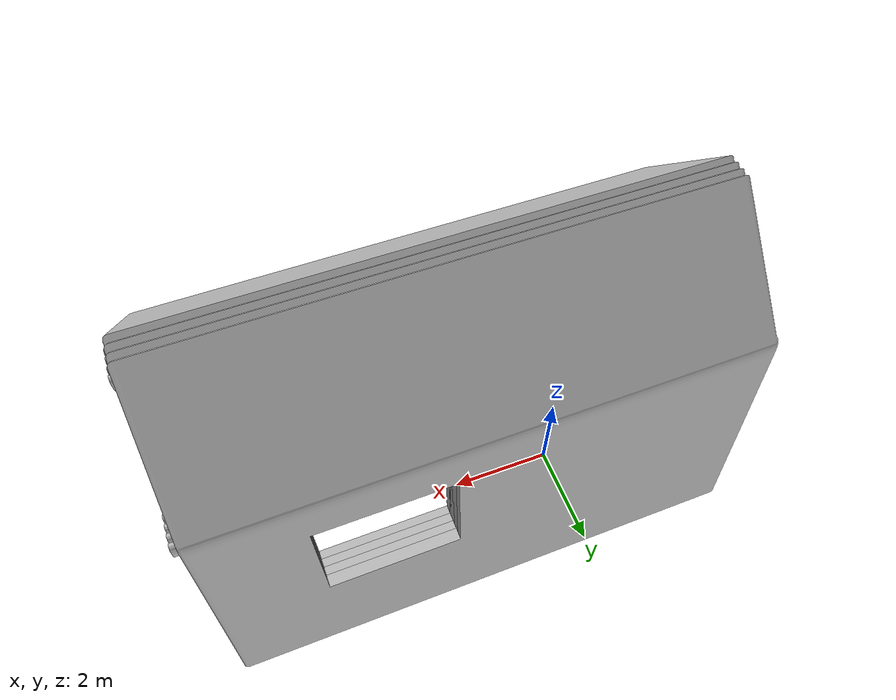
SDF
<?xml version="1.0" ?>
<sdf version="1.5">
  <model name="checkpoint_add">

	<include>
      <name>t1</name>
      <pose>0 0 0 0 0 3.14</pose>
      <uri>model://tent_add</uri>
    </include>
    <include>
      <name>d1</name>
      <pose>0.5 -0.9 0 0 0 0</pose>
      <uri>model://sandbag_add</uri>
    </include>
    <include>
      <name>d2</name>
      <pose>0.5 -0.75 0 0 0 0</pose>
      <uri>model://sandbag_add</uri>
    </include>
    <include>
      <name>d3</name>
      <pose>0.5 -0.6 0 0 0 0</pose>
      <uri>model://sandbag_add</uri>
    </include>
    <include>
      <name>d4</name>
      <pose>0.5 -0.45 0 0 0 0</pose>
      <uri>model://sandbag_add</uri>
    </include>

  </model>
</sdf>

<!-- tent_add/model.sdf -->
<sdf version='1.5'>
  <model name='tent_add'>
    <static>true</static>
      <link name='tent_add'>
        <pose frame=''>0 0 0 1.57 0 0</pose>
         <collision name='tent_add'>
          <geometry>
            <mesh>
              <scale>0.02 0.04 0.02</scale>
              <uri>model://tent_add/model.dae</uri>
            </mesh>
          </geometry>
          <max_contacts>10</max_contacts>
        </collision>
        <visual name='tent_add'>
        <cast_shadows>false</cast_shadows>
          <geometry>
            <mesh>
              <scale>0.02 0.04 0.02</scale>
              <uri>model://tent_add/model.dae</uri>
            </mesh>
          </geometry>
          <material>
            <script>
              <name>tent_add</name>
              <uri>model://tent_add/model.dae</uri>
            </script>
          </material>
        </visual>
      </link>
  </model>
</sdf>

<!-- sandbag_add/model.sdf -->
<sdf version='1.5'>
  <model name='sandbag_add'>
    <static>true</static>
      <link name='sandbag_add'>
        <pose frame=''>0 0 0 1.57 0 0</pose>
         <collision name='sandbag_add'>
          <geometry>
            <mesh>
              <scale>0.05 0.1 0.05</scale>
              <uri>model://sandbag_add/model.dae</uri>
            </mesh>
          </geometry>
          <max_contacts>10</max_contacts>
        </collision>
        <visual name='sandbag_add'>
        <cast_shadows>false</cast_shadows>
          <geometry>
            <mesh>
              <scale>0.05 0.1 0.05</scale>
              <uri>model://sandbag_add/model.dae</uri>
            </mesh>
          </geometry>
          <material>
            <script>
              <name>sandbag_add</name>
              <uri>model://sandbag_add/model.dae</uri>
            </script>
          </material>
        </visual>
      </link>
  </model>
</sdf>
